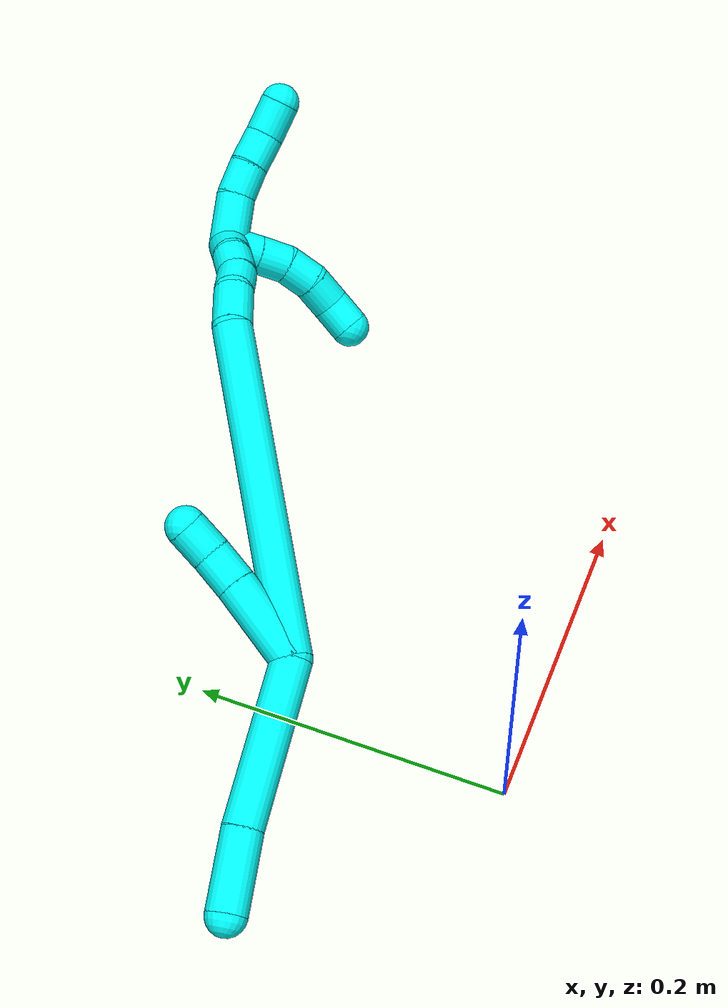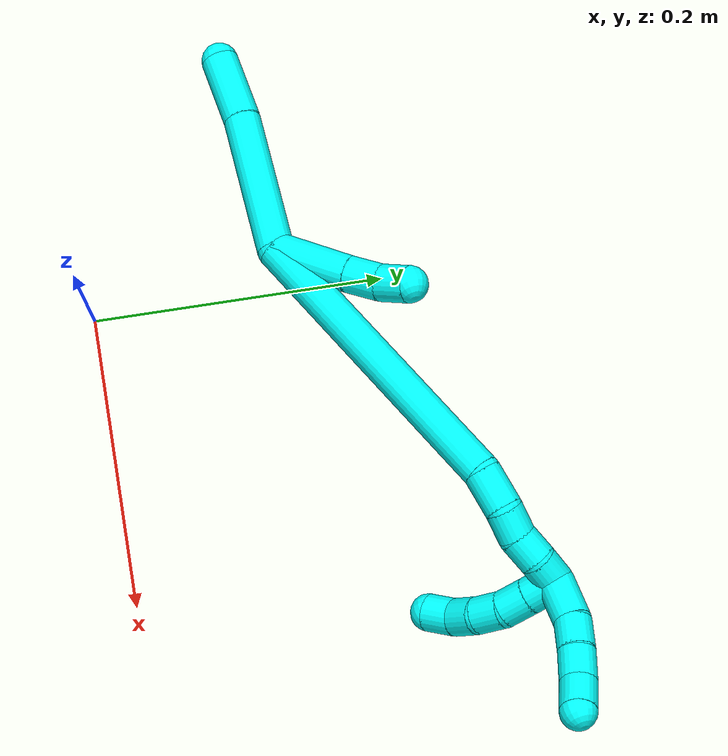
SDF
<sdf version="1.7">
 <world name="default">
  <model name="3">
   <static>0</static>
   <link name="3">
    <collision name="collision-cylinder-e_1_2_8">
     <pose>-0.002143 0.003021 -0.050507 -3.08185 -0.042333 1.23286</pose>
     <geometry><cylinder><radius>0.0125</radius><length>0.101284</length></cylinder></geometry>
     <surface>
      <friction><ode><mu>1.16</mu><mu2>1.16</mu2><slip1>0</slip1><slip2>0</slip2></ode></friction>
      <contact><ode><kp>1e+06</kp><kd>1</kd><max_vel>0</max_vel><min_depth>0.001</min_depth></ode></contact>
     </surface>
    </collision>
    <visual name="visual-cylinder-e_1_2_8">
     <pose>-0.002143 0.003021 -0.050507 -3.08185 -0.042333 1.23286</pose>
     <geometry><cylinder><radius>0.0125</radius><length>0.101284</length></cylinder></geometry>
     <material><ambient>0.003922 1 0.996078 1</ambient></material>
    </visual>
    <collision name="collision-cylinder-e_2_8_6">
     <pose>-0.005216 0.00516 -0.125337 3.10538 -0.038191 -1.62402</pose>
     <geometry><cylinder><radius>0.0125</radius><length>0.048716</length></cylinder></geometry>
     <surface>
      <friction><ode><mu>1.16</mu><mu2>1.16</mu2><slip1>0</slip1><slip2>0</slip2></ode></friction>
      <contact><ode><kp>1e+06</kp><kd>1</kd><max_vel>0</max_vel><min_depth>0.001</min_depth></ode></contact>
     </surface>
    </collision>
    <visual name="visual-cylinder-e_2_8_6">
     <pose>-0.005216 0.00516 -0.125337 3.10538 -0.038191 -1.62402</pose>
     <geometry><cylinder><radius>0.0125</radius><length>0.048716</length></cylinder></geometry>
     <material><ambient>0.003922 1 0.996078 1</ambient></material>
    </visual>
    <collision name="collision-cylinder-e_1_2_9">
     <pose>-0.005609 0.0194 0.018103 -0.819973 -0.208321 0.090806</pose>
     <geometry><cylinder><radius>0.0125</radius><length>0.054243</length></cylinder></geometry>
     <surface>
      <friction><ode><mu>1.16</mu><mu2>1.16</mu2><slip1>0</slip1><slip2>0</slip2></ode></friction>
      <contact><ode><kp>1e+06</kp><kd>1</kd><max_vel>0</max_vel><min_depth>0.001</min_depth></ode></contact>
     </surface>
    </collision>
    <visual name="visual-cylinder-e_1_2_9">
     <pose>-0.005609 0.0194 0.018103 -0.819973 -0.208321 0.090806</pose>
     <geometry><cylinder><radius>0.0125</radius><length>0.054243</length></cylinder></geometry>
     <material><ambient>0.003922 1 0.996078 1</ambient></material>
    </visual>
    <collision name="collision-cylinder-e_2_9_10">
     <pose>-0.013917 0.047602 0.04367 -0.867467 -0.229696 0.106752</pose>
     <geometry><cylinder><radius>0.0125</radius><length>0.023701</length></cylinder></geometry>
     <surface>
      <friction><ode><mu>1.16</mu><mu2>1.16</mu2><slip1>0</slip1><slip2>0</slip2></ode></friction>
      <contact><ode><kp>1e+06</kp><kd>1</kd><max_vel>0</max_vel><min_depth>0.001</min_depth></ode></contact>
     </surface>
    </collision>
    <visual name="visual-cylinder-e_2_9_10">
     <pose>-0.013917 0.047602 0.04367 -0.867467 -0.229696 0.106752</pose>
     <geometry><cylinder><radius>0.0125</radius><length>0.023701</length></cylinder></geometry>
     <material><ambient>0.003922 1 0.996078 1</ambient></material>
    </visual>
    <collision name="collision-cylinder-e_3_10_5">
     <pose>-0.022 0.064002 0.057038 -0.910202 -0.510163 0.253842</pose>
     <geometry><cylinder><radius>0.0125</radius><length>0.022056</length></cylinder></geometry>
     <surface>
      <friction><ode><mu>1.16</mu><mu2>1.16</mu2><slip1>0</slip1><slip2>0</slip2></ode></friction>
      <contact><ode><kp>1e+06</kp><kd>1</kd><max_vel>0</max_vel><min_depth>0.001</min_depth></ode></contact>
     </surface>
    </collision>
    <visual name="visual-cylinder-e_3_10_5">
     <pose>-0.022 0.064002 0.057038 -0.910202 -0.510163 0.253842</pose>
     <geometry><cylinder><radius>0.0125</radius><length>0.022056</length></cylinder></geometry>
     <material><ambient>0.003922 1 0.996078 1</ambient></material>
    </visual>
    <collision name="collision-cylinder-e_1_2_11">
     <pose>-0.004156 0.03943 0.098411 -0.381084 -0.039179 0.007558</pose>
     <geometry><cylinder><radius>0.0125</radius><length>0.212195</length></cylinder></geometry>
     <surface>
      <friction><ode><mu>1.16</mu><mu2>1.16</mu2><slip1>0</slip1><slip2>0</slip2></ode></friction>
      <contact><ode><kp>1e+06</kp><kd>1</kd><max_vel>0</max_vel><min_depth>0.001</min_depth></ode></contact>
     </surface>
    </collision>
    <visual name="visual-cylinder-e_1_2_11">
     <pose>-0.004156 0.03943 0.098411 -0.381084 -0.039179 0.007558</pose>
     <geometry><cylinder><radius>0.0125</radius><length>0.212195</length></cylinder></geometry>
     <material><ambient>0.003922 1 0.996078 1</ambient></material>
    </visual>
    <collision name="collision-cylinder-e_2_11_12">
     <pose>-0.004881 0.082304 0.209773 -0.259872 0.250608 -0.032917</pose>
     <geometry><cylinder><radius>0.0125</radius><length>0.027667</length></cylinder></geometry>
     <surface>
      <friction><ode><mu>1.16</mu><mu2>1.16</mu2><slip1>0</slip1><slip2>0</slip2></ode></friction>
      <contact><ode><kp>1e+06</kp><kd>1</kd><max_vel>0</max_vel><min_depth>0.001</min_depth></ode></contact>
     </surface>
    </collision>
    <visual name="visual-cylinder-e_2_11_12">
     <pose>-0.004881 0.082304 0.209773 -0.259872 0.250608 -0.032917</pose>
     <geometry><cylinder><radius>0.0125</radius><length>0.027667</length></cylinder></geometry>
     <material><ambient>0.003922 1 0.996078 1</ambient></material>
    </visual>
    <collision name="collision-cylinder-e_3_12_13">
     <pose>0.004061 0.088091 0.23079 -0.282744 0.580724 -0.085002</pose>
     <geometry><cylinder><radius>0.0125</radius><length>0.020092</length></cylinder></geometry>
     <surface>
      <friction><ode><mu>1.16</mu><mu2>1.16</mu2><slip1>0</slip1><slip2>0</slip2></ode></friction>
      <contact><ode><kp>1e+06</kp><kd>1</kd><max_vel>0</max_vel><min_depth>0.001</min_depth></ode></contact>
     </surface>
    </collision>
    <visual name="visual-cylinder-e_3_12_13">
     <pose>0.004061 0.088091 0.23079 -0.282744 0.580724 -0.085002</pose>
     <geometry><cylinder><radius>0.0125</radius><length>0.020092</length></cylinder></geometry>
     <material><ambient>0.003922 1 0.996078 1</ambient></material>
    </visual>
    <collision name="collision-cylinder-e_4_13_14">
     <pose>0.013781 0.095105 0.246649 -0.5399 0.433756 -0.121789</pose>
     <geometry><cylinder><radius>0.0125</radius><length>0.020027</length></cylinder></geometry>
     <surface>
      <friction><ode><mu>1.16</mu><mu2>1.16</mu2><slip1>0</slip1><slip2>0</slip2></ode></friction>
      <contact><ode><kp>1e+06</kp><kd>1</kd><max_vel>0</max_vel><min_depth>0.001</min_depth></ode></contact>
     </surface>
    </collision>
    <visual name="visual-cylinder-e_4_13_14">
     <pose>0.013781 0.095105 0.246649 -0.5399 0.433756 -0.121789</pose>
     <geometry><cylinder><radius>0.0125</radius><length>0.020027</length></cylinder></geometry>
     <material><ambient>0.003922 1 0.996078 1</ambient></material>
    </visual>
    <collision name="collision-cylinder-e_5_14_1">
     <pose>0.024233 0.104362 0.260782 -0.626389 0.673451 -0.22577</pose>
     <geometry><cylinder><radius>0.0125</radius><length>0.020019</length></cylinder></geometry>
     <surface>
      <friction><ode><mu>1.16</mu><mu2>1.16</mu2><slip1>0</slip1><slip2>0</slip2></ode></friction>
      <contact><ode><kp>1e+06</kp><kd>1</kd><max_vel>0</max_vel><min_depth>0.001</min_depth></ode></contact>
     </surface>
    </collision>
    <visual name="visual-cylinder-e_5_14_1">
     <pose>0.024233 0.104362 0.260782 -0.626389 0.673451 -0.22577</pose>
     <geometry><cylinder><radius>0.0125</radius><length>0.020019</length></cylinder></geometry>
     <material><ambient>0.003922 1 0.996078 1</ambient></material>
    </visual>
    <collision name="collision-cylinder-e_1_1_15">
     <pose>0.036119 0.100696 0.267303 1.54864 0.599634 0.587242</pose>
     <geometry><cylinder><radius>0.0125</radius><length>0.02</length></cylinder></geometry>
     <surface>
      <friction><ode><mu>1.16</mu><mu2>1.16</mu2><slip1>0</slip1><slip2>0</slip2></ode></friction>
      <contact><ode><kp>1e+06</kp><kd>1</kd><max_vel>0</max_vel><min_depth>0.001</min_depth></ode></contact>
     </surface>
    </collision>
    <visual name="visual-cylinder-e_1_1_15">
     <pose>0.036119 0.100696 0.267303 1.54864 0.599634 0.587242</pose>
     <geometry><cylinder><radius>0.0125</radius><length>0.02</length></cylinder></geometry>
     <material><ambient>0.003922 1 0.996078 1</ambient></material>
    </visual>
    <collision name="collision-cylinder-e_2_15_16">
     <pose>0.047427 0.084202 0.267538 1.5645 0.602281 0.598723</pose>
     <geometry><cylinder><radius>0.0125</radius><length>0.02</length></cylinder></geometry>
     <surface>
      <friction><ode><mu>1.16</mu><mu2>1.16</mu2><slip1>0</slip1><slip2>0</slip2></ode></friction>
      <contact><ode><kp>1e+06</kp><kd>1</kd><max_vel>0</max_vel><min_depth>0.001</min_depth></ode></contact>
     </surface>
    </collision>
    <visual name="visual-cylinder-e_2_15_16">
     <pose>0.047427 0.084202 0.267538 1.5645 0.602281 0.598723</pose>
     <geometry><cylinder><radius>0.0125</radius><length>0.02</length></cylinder></geometry>
     <material><ambient>0.003922 1 0.996078 1</ambient></material>
    </visual>
    <collision name="collision-cylinder-e_3_16_17">
     <pose>0.059126 0.068447 0.26492 1.91222 0.647716 0.887744</pose>
     <geometry><cylinder><radius>0.0125</radius><length>0.02</length></cylinder></geometry>
     <surface>
      <friction><ode><mu>1.16</mu><mu2>1.16</mu2><slip1>0</slip1><slip2>0</slip2></ode></friction>
      <contact><ode><kp>1e+06</kp><kd>1</kd><max_vel>0</max_vel><min_depth>0.001</min_depth></ode></contact>
     </surface>
    </collision>
    <visual name="visual-cylinder-e_3_16_17">
     <pose>0.059126 0.068447 0.26492 1.91222 0.647716 0.887744</pose>
     <geometry><cylinder><radius>0.0125</radius><length>0.02</length></cylinder></geometry>
     <material><ambient>0.003922 1 0.996078 1</ambient></material>
    </visual>
    <collision name="collision-cylinder-e_4_17_18">
     <pose>0.072246 0.055281 0.258027 2.21245 0.787557 1.3844</pose>
     <geometry><cylinder><radius>0.0125</radius><length>0.02</length></cylinder></geometry>
     <surface>
      <friction><ode><mu>1.16</mu><mu2>1.16</mu2><slip1>0</slip1><slip2>0</slip2></ode></friction>
      <contact><ode><kp>1e+06</kp><kd>1</kd><max_vel>0</max_vel><min_depth>0.001</min_depth></ode></contact>
     </surface>
    </collision>
    <visual name="visual-cylinder-e_4_17_18">
     <pose>0.072246 0.055281 0.258027 2.21245 0.787557 1.3844</pose>
     <geometry><cylinder><radius>0.0125</radius><length>0.02</length></cylinder></geometry>
     <material><ambient>0.003922 1 0.996078 1</ambient></material>
    </visual>
    <collision name="collision-cylinder-e_5_18_4">
     <pose>0.083604 0.042675 0.248024 2.26429 0.441289 0.891962</pose>
     <geometry><cylinder><radius>0.0125</radius><length>0.02</length></cylinder></geometry>
     <surface>
      <friction><ode><mu>1.16</mu><mu2>1.16</mu2><slip1>0</slip1><slip2>0</slip2></ode></friction>
      <contact><ode><kp>1e+06</kp><kd>1</kd><max_vel>0</max_vel><min_depth>0.001</min_depth></ode></contact>
     </surface>
    </collision>
    <visual name="visual-cylinder-e_5_18_4">
     <pose>0.083604 0.042675 0.248024 2.26429 0.441289 0.891962</pose>
     <geometry><cylinder><radius>0.0125</radius><length>0.02</length></cylinder></geometry>
     <material><ambient>0.003922 1 0.996078 1</ambient></material>
    </visual>
    <collision name="collision-cylinder-e_1_1_19">
     <pose>0.02784 0.109244 0.283034 -0.018554 -0.164075 0.001526</pose>
     <geometry><cylinder><radius>0.0125</radius><length>0.032265</length></cylinder></geometry>
     <surface>
      <friction><ode><mu>1.16</mu><mu2>1.16</mu2><slip1>0</slip1><slip2>0</slip2></ode></friction>
      <contact><ode><kp>1e+06</kp><kd>1</kd><max_vel>0</max_vel><min_depth>0.001</min_depth></ode></contact>
     </surface>
    </collision>
    <visual name="visual-cylinder-e_1_1_19">
     <pose>0.02784 0.109244 0.283034 -0.018554 -0.164075 0.001526</pose>
     <geometry><cylinder><radius>0.0125</radius><length>0.032265</length></cylinder></geometry>
     <material><ambient>0.003922 1 0.996078 1</ambient></material>
    </visual>
    <collision name="collision-cylinder-e_2_19_20">
     <pose>0.023591 0.107038 0.309567 0.231353 -0.146838 -0.017092</pose>
     <geometry><cylinder><radius>0.0125</radius><length>0.022059</length></cylinder></geometry>
     <surface>
      <friction><ode><mu>1.16</mu><mu2>1.16</mu2><slip1>0</slip1><slip2>0</slip2></ode></friction>
      <contact><ode><kp>1e+06</kp><kd>1</kd><max_vel>0</max_vel><min_depth>0.001</min_depth></ode></contact>
     </surface>
    </collision>
    <visual name="visual-cylinder-e_2_19_20">
     <pose>0.023591 0.107038 0.309567 0.231353 -0.146838 -0.017092</pose>
     <geometry><cylinder><radius>0.0125</radius><length>0.022059</length></cylinder></geometry>
     <material><ambient>0.003922 1 0.996078 1</ambient></material>
    </visual>
    <collision name="collision-cylinder-e_3_20_21">
     <pose>0.021453 0.101477 0.330843 0.279531 -0.047315 -0.006658</pose>
     <geometry><cylinder><radius>0.0125</radius><length>0.022198</length></cylinder></geometry>
     <surface>
      <friction><ode><mu>1.16</mu><mu2>1.16</mu2><slip1>0</slip1><slip2>0</slip2></ode></friction>
      <contact><ode><kp>1e+06</kp><kd>1</kd><max_vel>0</max_vel><min_depth>0.001</min_depth></ode></contact>
     </surface>
    </collision>
    <visual name="visual-cylinder-e_3_20_21">
     <pose>0.021453 0.101477 0.330843 0.279531 -0.047315 -0.006658</pose>
     <geometry><cylinder><radius>0.0125</radius><length>0.022198</length></cylinder></geometry>
     <material><ambient>0.003922 1 0.996078 1</ambient></material>
    </visual>
    <collision name="collision-cylinder-e_4_21_3">
     <pose>0.017443 0.094422 0.351973 0.364547 -0.301377 -0.055959</pose>
     <geometry><cylinder><radius>0.0125</radius><length>0.023478</length></cylinder></geometry>
     <surface>
      <friction><ode><mu>1.16</mu><mu2>1.16</mu2><slip1>0</slip1><slip2>0</slip2></ode></friction>
      <contact><ode><kp>1e+06</kp><kd>1</kd><max_vel>0</max_vel><min_depth>0.001</min_depth></ode></contact>
     </surface>
    </collision>
    <visual name="visual-cylinder-e_4_21_3">
     <pose>0.017443 0.094422 0.351973 0.364547 -0.301377 -0.055959</pose>
     <geometry><cylinder><radius>0.0125</radius><length>0.023478</length></cylinder></geometry>
     <material><ambient>0.003922 1 0.996078 1</ambient></material>
    </visual>
    <collision name="collision-sphere-3">
     <pose>0.013959 0.090425 0.362446 0 -0 0</pose>
     <geometry><sphere><radius>0.0125</radius></sphere></geometry>
     <surface>
      <friction><ode><mu>1.16</mu><mu2>1.16</mu2><slip1>0</slip1><slip2>0</slip2></ode></friction>
      <contact><ode><kp>1e+06</kp><kd>1</kd><max_vel>0</max_vel><min_depth>0.001</min_depth></ode></contact>
     </surface>
    </collision>
    <visual name="visual-sphere-3">
     <pose>0.013959 0.090425 0.362446 0 -0 0</pose>
     <geometry><sphere><radius>0.0125</radius></sphere></geometry>
     <material><ambient>0.003922 1 0.996078 1</ambient></material>
    </visual>
    <collision name="collision-sphere-21">
     <pose>0.020928 0.098418 0.3415 0 -0 0</pose>
     <geometry><sphere><radius>0.0125</radius></sphere></geometry>
     <surface>
      <friction><ode><mu>1.16</mu><mu2>1.16</mu2><slip1>0</slip1><slip2>0</slip2></ode></friction>
      <contact><ode><kp>1e+06</kp><kd>1</kd><max_vel>0</max_vel><min_depth>0.001</min_depth></ode></contact>
     </surface>
    </collision>
    <visual name="visual-sphere-21">
     <pose>0.020928 0.098418 0.3415 0 -0 0</pose>
     <geometry><sphere><radius>0.0125</radius></sphere></geometry>
     <material><ambient>0.003922 1 0.996078 1</ambient></material>
    </visual>
    <collision name="collision-sphere-20">
     <pose>0.021978 0.104536 0.320187 0 -0 0</pose>
     <geometry><sphere><radius>0.0125</radius></sphere></geometry>
     <surface>
      <friction><ode><mu>1.16</mu><mu2>1.16</mu2><slip1>0</slip1><slip2>0</slip2></ode></friction>
      <contact><ode><kp>1e+06</kp><kd>1</kd><max_vel>0</max_vel><min_depth>0.001</min_depth></ode></contact>
     </surface>
    </collision>
    <visual name="visual-sphere-20">
     <pose>0.021978 0.104536 0.320187 0 -0 0</pose>
     <geometry><sphere><radius>0.0125</radius></sphere></geometry>
     <material><ambient>0.003922 1 0.996078 1</ambient></material>
    </visual>
    <collision name="collision-sphere-19">
     <pose>0.025205 0.10954 0.298947 0 -0 0</pose>
     <geometry><sphere><radius>0.0125</radius></sphere></geometry>
     <surface>
      <friction><ode><mu>1.16</mu><mu2>1.16</mu2><slip1>0</slip1><slip2>0</slip2></ode></friction>
      <contact><ode><kp>1e+06</kp><kd>1</kd><max_vel>0</max_vel><min_depth>0.001</min_depth></ode></contact>
     </surface>
    </collision>
    <visual name="visual-sphere-19">
     <pose>0.025205 0.10954 0.298947 0 -0 0</pose>
     <geometry><sphere><radius>0.0125</radius></sphere></geometry>
     <material><ambient>0.003922 1 0.996078 1</ambient></material>
    </visual>
    <collision name="collision-sphere-5">
     <pose>-0.027385 0.071601 0.062943 0 -0 0</pose>
     <geometry><sphere><radius>0.0125</radius></sphere></geometry>
     <surface>
      <friction><ode><mu>1.16</mu><mu2>1.16</mu2><slip1>0</slip1><slip2>0</slip2></ode></friction>
      <contact><ode><kp>1e+06</kp><kd>1</kd><max_vel>0</max_vel><min_depth>0.001</min_depth></ode></contact>
     </surface>
    </collision>
    <visual name="visual-sphere-5">
     <pose>-0.027385 0.071601 0.062943 0 -0 0</pose>
     <geometry><sphere><radius>0.0125</radius></sphere></geometry>
     <material><ambient>0.003922 1 0.996078 1</ambient></material>
    </visual>
    <collision name="collision-sphere-10">
     <pose>-0.016615 0.056403 0.051133 0 -0 0</pose>
     <geometry><sphere><radius>0.0125</radius></sphere></geometry>
     <surface>
      <friction><ode><mu>1.16</mu><mu2>1.16</mu2><slip1>0</slip1><slip2>0</slip2></ode></friction>
      <contact><ode><kp>1e+06</kp><kd>1</kd><max_vel>0</max_vel><min_depth>0.001</min_depth></ode></contact>
     </surface>
    </collision>
    <visual name="visual-sphere-10">
     <pose>-0.016615 0.056403 0.051133 0 -0 0</pose>
     <geometry><sphere><radius>0.0125</radius></sphere></geometry>
     <material><ambient>0.003922 1 0.996078 1</ambient></material>
    </visual>
    <collision name="collision-sphere-6">
     <pose>-0.006146 0.004279 -0.149661 0 -0 0</pose>
     <geometry><sphere><radius>0.0125</radius></sphere></geometry>
     <surface>
      <friction><ode><mu>1.16</mu><mu2>1.16</mu2><slip1>0</slip1><slip2>0</slip2></ode></friction>
      <contact><ode><kp>1e+06</kp><kd>1</kd><max_vel>0</max_vel><min_depth>0.001</min_depth></ode></contact>
     </surface>
    </collision>
    <visual name="visual-sphere-6">
     <pose>-0.006146 0.004279 -0.149661 0 -0 0</pose>
     <geometry><sphere><radius>0.0125</radius></sphere></geometry>
     <material><ambient>0.003922 1 0.996078 1</ambient></material>
    </visual>
    <collision name="collision-sphere-9">
     <pose>-0.011218 0.038801 0.036206 0 -0 0</pose>
     <geometry><sphere><radius>0.0125</radius></sphere></geometry>
     <surface>
      <friction><ode><mu>1.16</mu><mu2>1.16</mu2><slip1>0</slip1><slip2>0</slip2></ode></friction>
      <contact><ode><kp>1e+06</kp><kd>1</kd><max_vel>0</max_vel><min_depth>0.001</min_depth></ode></contact>
     </surface>
    </collision>
    <visual name="visual-sphere-9">
     <pose>-0.011218 0.038801 0.036206 0 -0 0</pose>
     <geometry><sphere><radius>0.0125</radius></sphere></geometry>
     <material><ambient>0.003922 1 0.996078 1</ambient></material>
    </visual>
    <collision name="collision-sphere-2">
     <geometry><sphere><radius>0.0125</radius></sphere></geometry>
     <surface>
      <friction><ode><mu>1.16</mu><mu2>1.16</mu2><slip1>0</slip1><slip2>0</slip2></ode></friction>
      <contact><ode><kp>1e+06</kp><kd>1</kd><max_vel>0</max_vel><min_depth>0.001</min_depth></ode></contact>
     </surface>
    </collision>
    <visual name="visual-sphere-2">
     <geometry><sphere><radius>0.0125</radius></sphere></geometry>
     <material><ambient>0.003922 1 0.996078 1</ambient></material>
    </visual>
    <collision name="collision-sphere-8">
     <pose>-0.004286 0.006042 -0.101013 0 -0 0</pose>
     <geometry><sphere><radius>0.0125</radius></sphere></geometry>
     <surface>
      <friction><ode><mu>1.16</mu><mu2>1.16</mu2><slip1>0</slip1><slip2>0</slip2></ode></friction>
      <contact><ode><kp>1e+06</kp><kd>1</kd><max_vel>0</max_vel><min_depth>0.001</min_depth></ode></contact>
     </surface>
    </collision>
    <visual name="visual-sphere-8">
     <pose>-0.004286 0.006042 -0.101013 0 -0 0</pose>
     <geometry><sphere><radius>0.0125</radius></sphere></geometry>
     <material><ambient>0.003922 1 0.996078 1</ambient></material>
    </visual>
    <collision name="collision-sphere-11">
     <pose>-0.008312 0.078861 0.196822 0 -0 0</pose>
     <geometry><sphere><radius>0.0125</radius></sphere></geometry>
     <surface>
      <friction><ode><mu>1.16</mu><mu2>1.16</mu2><slip1>0</slip1><slip2>0</slip2></ode></friction>
      <contact><ode><kp>1e+06</kp><kd>1</kd><max_vel>0</max_vel><min_depth>0.001</min_depth></ode></contact>
     </surface>
    </collision>
    <visual name="visual-sphere-11">
     <pose>-0.008312 0.078861 0.196822 0 -0 0</pose>
     <geometry><sphere><radius>0.0125</radius></sphere></geometry>
     <material><ambient>0.003922 1 0.996078 1</ambient></material>
    </visual>
    <collision name="collision-sphere-12">
     <pose>-0.00145 0.085748 0.222724 0 -0 0</pose>
     <geometry><sphere><radius>0.0125</radius></sphere></geometry>
     <surface>
      <friction><ode><mu>1.16</mu><mu2>1.16</mu2><slip1>0</slip1><slip2>0</slip2></ode></friction>
      <contact><ode><kp>1e+06</kp><kd>1</kd><max_vel>0</max_vel><min_depth>0.001</min_depth></ode></contact>
     </surface>
    </collision>
    <visual name="visual-sphere-12">
     <pose>-0.00145 0.085748 0.222724 0 -0 0</pose>
     <geometry><sphere><radius>0.0125</radius></sphere></geometry>
     <material><ambient>0.003922 1 0.996078 1</ambient></material>
    </visual>
    <collision name="collision-sphere-13">
     <pose>0.009573 0.090434 0.238855 0 -0 0</pose>
     <geometry><sphere><radius>0.0125</radius></sphere></geometry>
     <surface>
      <friction><ode><mu>1.16</mu><mu2>1.16</mu2><slip1>0</slip1><slip2>0</slip2></ode></friction>
      <contact><ode><kp>1e+06</kp><kd>1</kd><max_vel>0</max_vel><min_depth>0.001</min_depth></ode></contact>
     </surface>
    </collision>
    <visual name="visual-sphere-13">
     <pose>0.009573 0.090434 0.238855 0 -0 0</pose>
     <geometry><sphere><radius>0.0125</radius></sphere></geometry>
     <material><ambient>0.003922 1 0.996078 1</ambient></material>
    </visual>
    <collision name="collision-sphere-14">
     <pose>0.01799 0.099776 0.254443 0 -0 0</pose>
     <geometry><sphere><radius>0.0125</radius></sphere></geometry>
     <surface>
      <friction><ode><mu>1.16</mu><mu2>1.16</mu2><slip1>0</slip1><slip2>0</slip2></ode></friction>
      <contact><ode><kp>1e+06</kp><kd>1</kd><max_vel>0</max_vel><min_depth>0.001</min_depth></ode></contact>
     </surface>
    </collision>
    <visual name="visual-sphere-14">
     <pose>0.01799 0.099776 0.254443 0 -0 0</pose>
     <geometry><sphere><radius>0.0125</radius></sphere></geometry>
     <material><ambient>0.003922 1 0.996078 1</ambient></material>
    </visual>
    <collision name="collision-sphere-1">
     <pose>0.030475 0.108949 0.26712 0 -0 0</pose>
     <geometry><sphere><radius>0.0125</radius></sphere></geometry>
     <surface>
      <friction><ode><mu>1.16</mu><mu2>1.16</mu2><slip1>0</slip1><slip2>0</slip2></ode></friction>
      <contact><ode><kp>1e+06</kp><kd>1</kd><max_vel>0</max_vel><min_depth>0.001</min_depth></ode></contact>
     </surface>
    </collision>
    <visual name="visual-sphere-1">
     <pose>0.030475 0.108949 0.26712 0 -0 0</pose>
     <geometry><sphere><radius>0.0125</radius></sphere></geometry>
     <material><ambient>0.003922 1 0.996078 1</ambient></material>
    </visual>
    <collision name="collision-sphere-18">
     <pose>0.079333 0.049628 0.253804 0 -0 0</pose>
     <geometry><sphere><radius>0.0125</radius></sphere></geometry>
     <surface>
      <friction><ode><mu>1.16</mu><mu2>1.16</mu2><slip1>0</slip1><slip2>0</slip2></ode></friction>
      <contact><ode><kp>1e+06</kp><kd>1</kd><max_vel>0</max_vel><min_depth>0.001</min_depth></ode></contact>
     </surface>
    </collision>
    <visual name="visual-sphere-18">
     <pose>0.079333 0.049628 0.253804 0 -0 0</pose>
     <geometry><sphere><radius>0.0125</radius></sphere></geometry>
     <material><ambient>0.003922 1 0.996078 1</ambient></material>
    </visual>
    <collision name="collision-sphere-15">
     <pose>0.041762 0.092442 0.267486 0 -0 0</pose>
     <geometry><sphere><radius>0.0125</radius></sphere></geometry>
     <surface>
      <friction><ode><mu>1.16</mu><mu2>1.16</mu2><slip1>0</slip1><slip2>0</slip2></ode></friction>
      <contact><ode><kp>1e+06</kp><kd>1</kd><max_vel>0</max_vel><min_depth>0.001</min_depth></ode></contact>
     </surface>
    </collision>
    <visual name="visual-sphere-15">
     <pose>0.041762 0.092442 0.267486 0 -0 0</pose>
     <geometry><sphere><radius>0.0125</radius></sphere></geometry>
     <material><ambient>0.003922 1 0.996078 1</ambient></material>
    </visual>
    <collision name="collision-sphere-16">
     <pose>0.053093 0.075962 0.26759 0 -0 0</pose>
     <geometry><sphere><radius>0.0125</radius></sphere></geometry>
     <surface>
      <friction><ode><mu>1.16</mu><mu2>1.16</mu2><slip1>0</slip1><slip2>0</slip2></ode></friction>
      <contact><ode><kp>1e+06</kp><kd>1</kd><max_vel>0</max_vel><min_depth>0.001</min_depth></ode></contact>
     </surface>
    </collision>
    <visual name="visual-sphere-16">
     <pose>0.053093 0.075962 0.26759 0 -0 0</pose>
     <geometry><sphere><radius>0.0125</radius></sphere></geometry>
     <material><ambient>0.003922 1 0.996078 1</ambient></material>
    </visual>
    <collision name="collision-sphere-17">
     <pose>0.06516 0.060933 0.26225 0 -0 0</pose>
     <geometry><sphere><radius>0.0125</radius></sphere></geometry>
     <surface>
      <friction><ode><mu>1.16</mu><mu2>1.16</mu2><slip1>0</slip1><slip2>0</slip2></ode></friction>
      <contact><ode><kp>1e+06</kp><kd>1</kd><max_vel>0</max_vel><min_depth>0.001</min_depth></ode></contact>
     </surface>
    </collision>
    <visual name="visual-sphere-17">
     <pose>0.06516 0.060933 0.26225 0 -0 0</pose>
     <geometry><sphere><radius>0.0125</radius></sphere></geometry>
     <material><ambient>0.003922 1 0.996078 1</ambient></material>
    </visual>
    <collision name="collision-sphere-4">
     <pose>0.087875 0.035721 0.242244 0 -0 0</pose>
     <geometry><sphere><radius>0.0125</radius></sphere></geometry>
     <surface>
      <friction><ode><mu>1.16</mu><mu2>1.16</mu2><slip1>0</slip1><slip2>0</slip2></ode></friction>
      <contact><ode><kp>1e+06</kp><kd>1</kd><max_vel>0</max_vel><min_depth>0.001</min_depth></ode></contact>
     </surface>
    </collision>
    <visual name="visual-sphere-4">
     <pose>0.087875 0.035721 0.242244 0 -0 0</pose>
     <geometry><sphere><radius>0.0125</radius></sphere></geometry>
     <material><ambient>0.003922 1 0.996078 1</ambient></material>
    </visual>
    <inertial>
     <pose>0.00868 0.050585 0.121629 0 -0 0</pose>
     <mass>0.75</mass>
     <inertia>
      <ixx>0.00096</ixx>
      <ixy>0</ixy>
      <ixz>0</ixz>
      <iyy>0.000841</iyy>
      <iyz>0</iyz>
      <izz>-0.000259</izz>
     </inertia>
    </inertial>
   </link>
   <pose>-0.013388 0.130119 0.101257 -0.414462 1.21045 -0.277913</pose>
  </model>
 </world>
</sdf>
